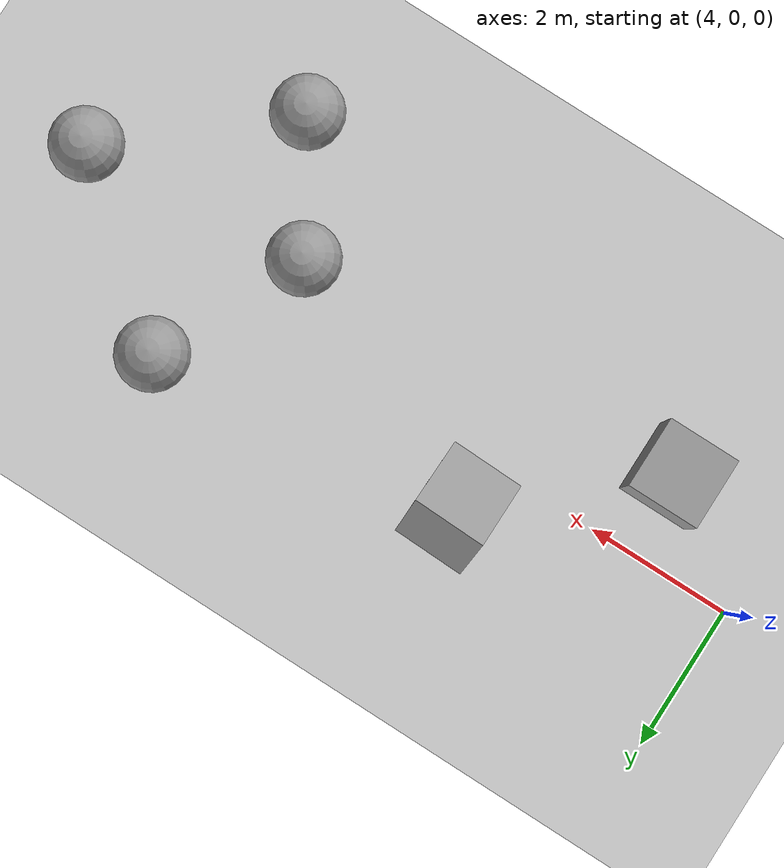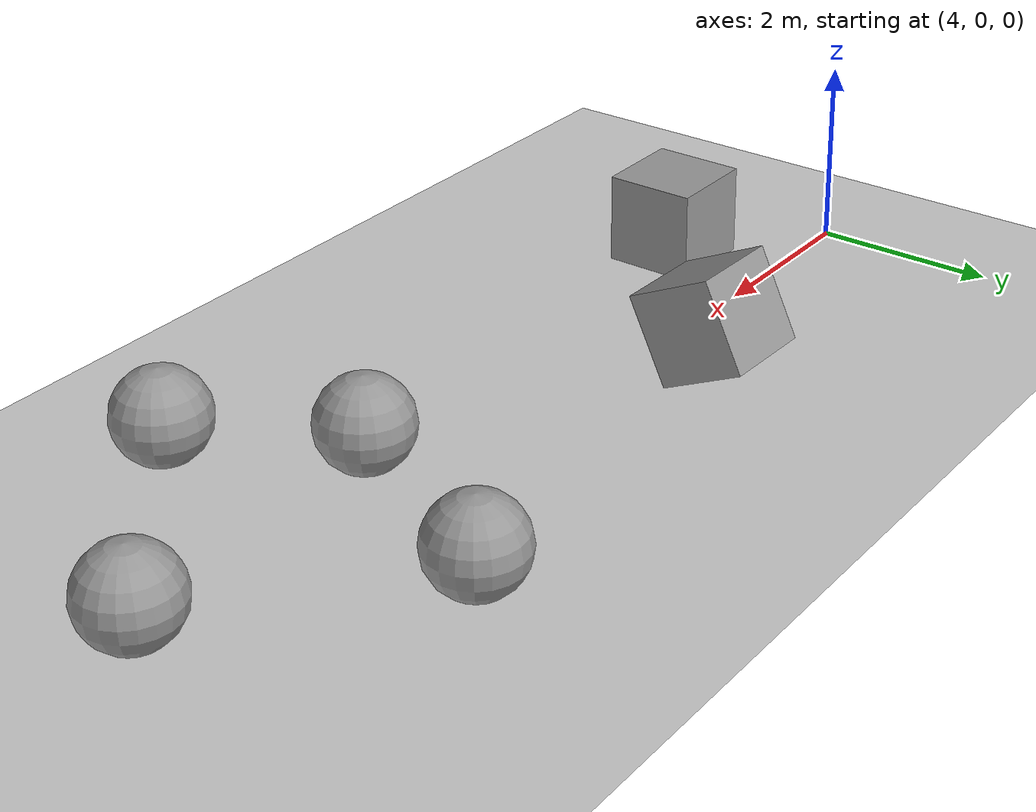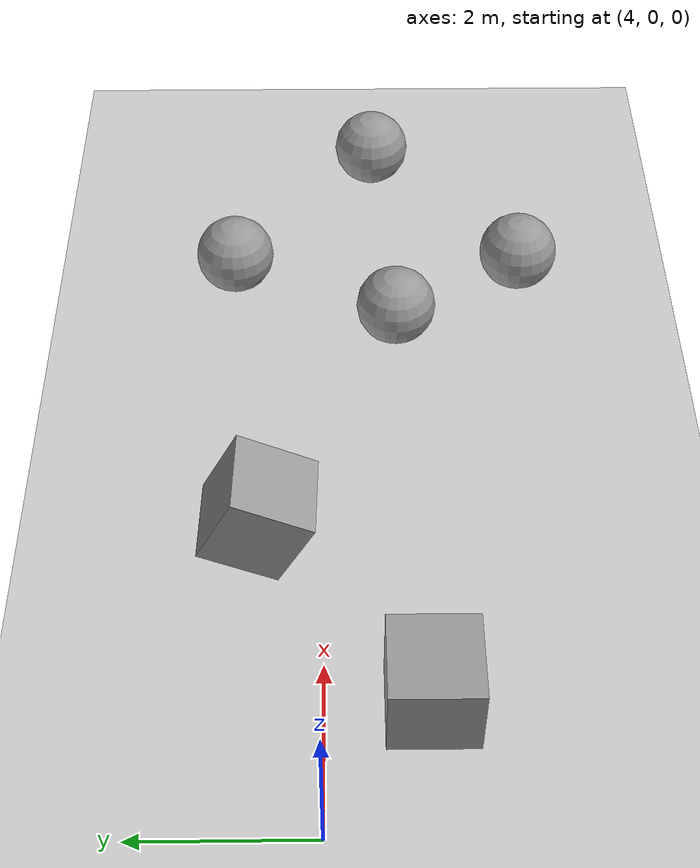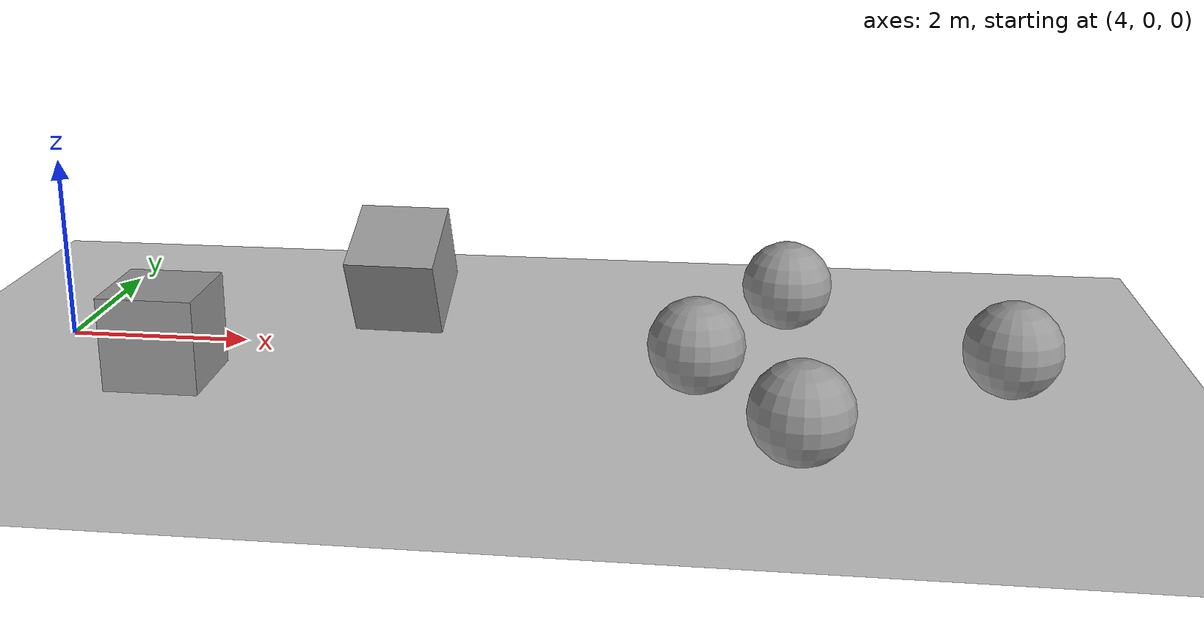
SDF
<sdf version="1.7">
 <world name="default">
  <light name="sun" type="directional">
   <pose>0 0 10 0 -0 0</pose>
   <diffuse>0.8 0.8 0.8 1</diffuse>
   <specular>0.2 0.2 0.2 1</specular>
   <attenuation>
    <range>1000</range>
    <constant>0.9</constant>
    <linear>0.01</linear>
    <quadratic>0.001</quadratic>
   </attenuation>
   <direction>-0.5 0.1 -0.9</direction>
   <spot><inner_angle>0</inner_angle><outer_angle>0</outer_angle><falloff>0</falloff></spot>
  </light>
  <model name="ground_plane">
   <static>1</static>
   <link name="link">
    <collision name="collision">
     <geometry><plane><normal>0 0 1</normal><size>100 100</size></plane></geometry>
     <surface><friction><ode><mu>100</mu><mu2>50</mu2></ode></friction></surface>
    </collision>
    <visual name="visual">
     <cast_shadows>0</cast_shadows>
     <geometry><plane><normal>0 0 1</normal><size>100 100</size></plane></geometry>
     <material>
      <script><uri>file://media/materials/scripts/gazebo.material</uri><name>Gazebo/Grey</name></script>
     </material>
    </visual>
   </link>
  </model>
  <gravity>0 0 -9.8</gravity>
  <magnetic_field>6e-06 2.3e-05 -4.2e-05</magnetic_field>
  <atmosphere type="adiabatic"/>
  <physics type="ode">
   <max_step_size>0.001</max_step_size>
   <real_time_factor>1</real_time_factor>
   <real_time_update_rate>1000</real_time_update_rate>
  </physics>
  <scene><ambient>0.4 0.4 0.4 1</ambient><background>0.7 0.7 0.7 1</background><shadows>1</shadows></scene>
  <spherical_coordinates>
   <surface_model>EARTH_WGS84</surface_model>
   <latitude_deg>0</latitude_deg>
   <longitude_deg>0</longitude_deg>
   <elevation>0</elevation>
   <heading_deg>0</heading_deg>
  </spherical_coordinates>
  <model name="unit_box">
   <pose>5.49284 -1.14111 0.499995 -1e-05 -0 -0</pose>
   <link name="link">
    <inertial>
     <mass>1</mass>
     <inertia>
      <ixx>0.166667</ixx>
      <ixy>0</ixy>
      <ixz>0</ixz>
      <iyy>0.166667</iyy>
      <iyz>0</iyz>
      <izz>0.166667</izz>
     </inertia>
    </inertial>
    <collision name="collision"><geometry><box><size>1 1 1</size></box></geometry></collision>
    <visual name="visual">
     <geometry><box><size>1 1 1</size></box></geometry>
     <material>
      <script><name>Gazebo/Grey</name><uri>file://media/materials/scripts/gazebo.material</uri></script>
     </material>
    </visual>
   </link>
  </model>
  <model name="unit_box_0">
   <pose>7.63123 0.739606 0.667864 0.45068 -0 -0.027125</pose>
   <link name="link">
    <inertial>
     <mass>1</mass>
     <inertia>
      <ixx>0.166667</ixx>
      <ixy>0</ixy>
      <ixz>0</ixz>
      <iyy>0.166667</iyy>
      <iyz>0</iyz>
      <izz>0.166667</izz>
     </inertia>
    </inertial>
    <collision name="collision"><geometry><box><size>1 1 1</size></box></geometry></collision>
    <visual name="visual">
     <geometry><box><size>1 1 1</size></box></geometry>
     <material>
      <script><name>Gazebo/Grey</name><uri>file://media/materials/scripts/gazebo.material</uri></script>
     </material>
    </visual>
   </link>
  </model>
  <model name="unit_sphere">
   <pose>11.0114 -0.903995 0.5 0 -0 0</pose>
   <link name="link">
    <inertial>
     <mass>1</mass>
     <inertia><ixx>0.1</ixx><ixy>0</ixy><ixz>0</ixz><iyy>0.1</iyy><iyz>0</iyz><izz>0.1</izz></inertia>
    </inertial>
    <collision name="collision"><geometry><sphere><radius>0.5</radius></sphere></geometry></collision>
    <visual name="visual">
     <geometry><sphere><radius>0.5</radius></sphere></geometry>
     <material>
      <script><name>Gazebo/Grey</name><uri>file://media/materials/scripts/gazebo.material</uri></script>
     </material>
    </visual>
   </link>
  </model>
  <model name="unit_sphere_clone">
   <pose>11.9803 1.1767 0.5 0 -0 0</pose>
   <link name="link">
    <inertial>
     <mass>1</mass>
     <inertia><ixx>0.1</ixx><ixy>0</ixy><ixz>0</ixz><iyy>0.1</iyy><iyz>0</iyz><izz>0.1</izz></inertia>
    </inertial>
    <collision name="collision"><geometry><sphere><radius>0.5</radius></sphere></geometry></collision>
    <visual name="visual">
     <geometry><sphere><radius>0.5</radius></sphere></geometry>
     <material>
      <script><name>Gazebo/Grey</name><uri>file://media/materials/scripts/gazebo.material</uri></script>
     </material>
    </visual>
   </link>
  </model>
  <model name="unit_sphere_clone_0">
   <pose>14.1792 -0.64481 0.5 0 -0 0</pose>
   <link name="link">
    <inertial>
     <mass>1</mass>
     <inertia><ixx>0.1</ixx><ixy>0</ixy><ixz>0</ixz><iyy>0.1</iyy><iyz>0</iyz><izz>0.1</izz></inertia>
    </inertial>
    <collision name="collision"><geometry><sphere><radius>0.5</radius></sphere></geometry></collision>
    <visual name="visual">
     <geometry><sphere><radius>0.5</radius></sphere></geometry>
     <material>
      <script><name>Gazebo/Grey</name><uri>file://media/materials/scripts/gazebo.material</uri></script>
     </material>
    </visual>
   </link>
  </model>
  <model name="unit_sphere_clone_1">
   <pose>12.0038 -2.5363 0.5 0 -0 0</pose>
   <link name="link">
    <inertial>
     <mass>1</mass>
     <inertia><ixx>0.1</ixx><ixy>0</ixy><ixz>0</ixz><iyy>0.1</iyy><iyz>0</iyz><izz>0.1</izz></inertia>
    </inertial>
    <collision name="collision"><geometry><sphere><radius>0.5</radius></sphere></geometry></collision>
    <visual name="visual">
     <geometry><sphere><radius>0.5</radius></sphere></geometry>
     <material>
      <script><name>Gazebo/Grey</name><uri>file://media/materials/scripts/gazebo.material</uri></script>
     </material>
    </visual>
   </link>
  </model>
 </world>
</sdf>
